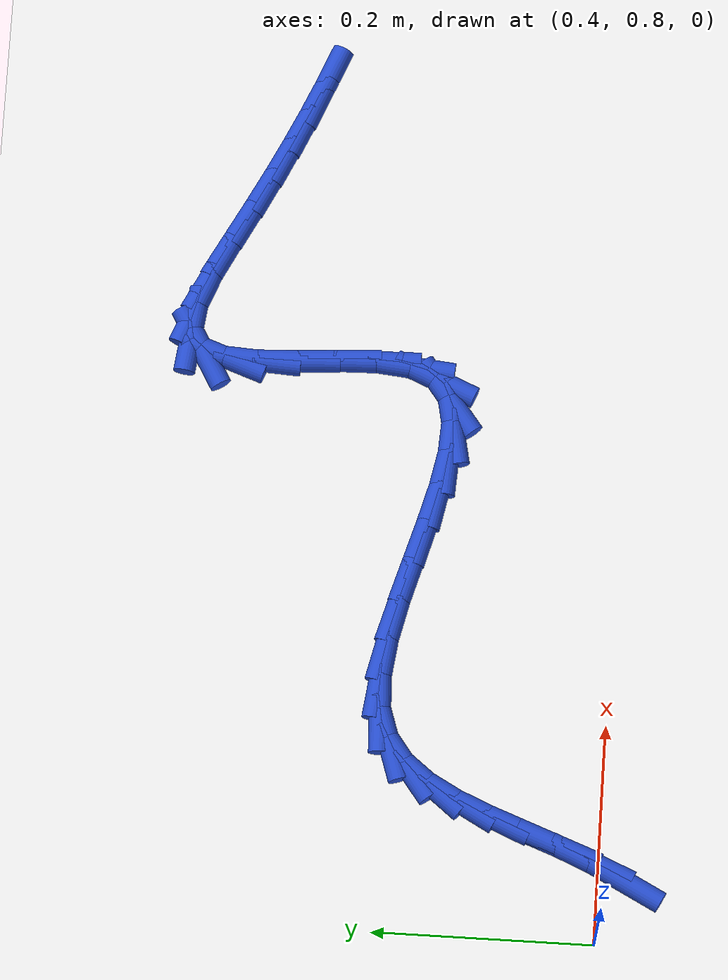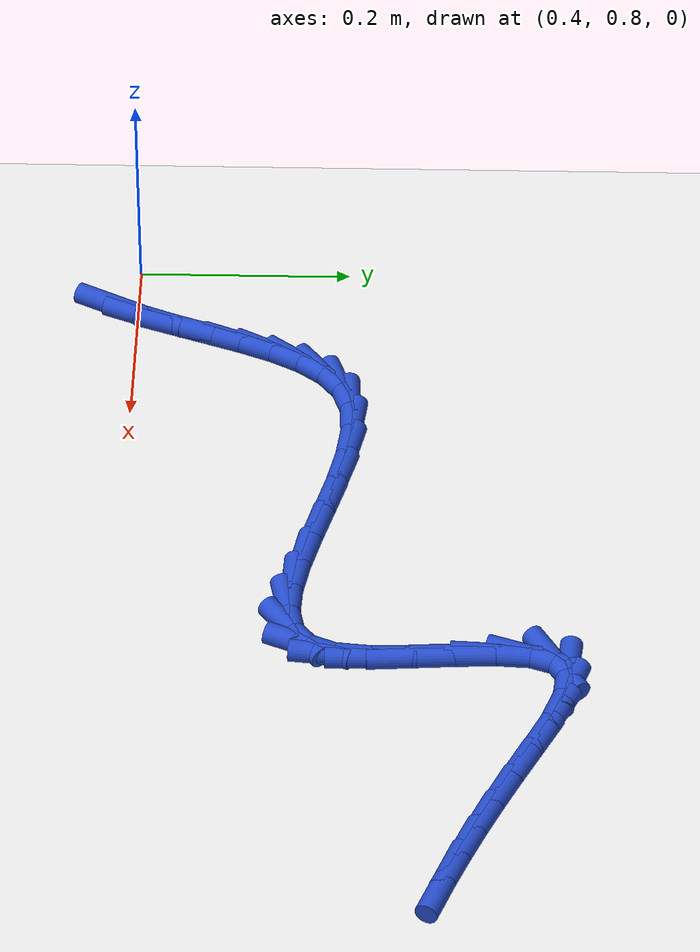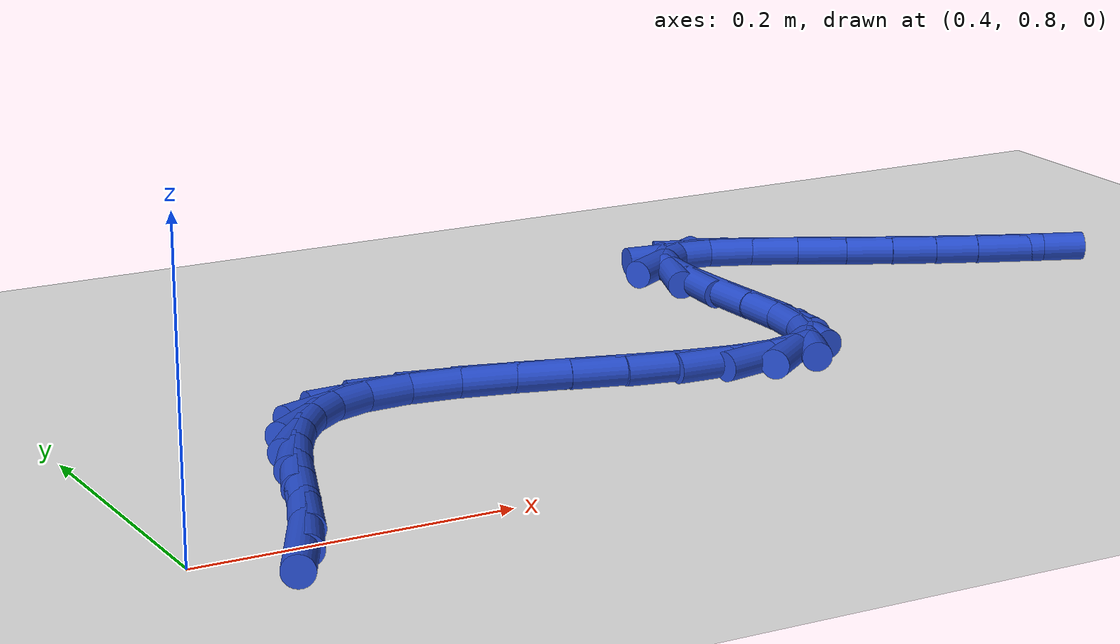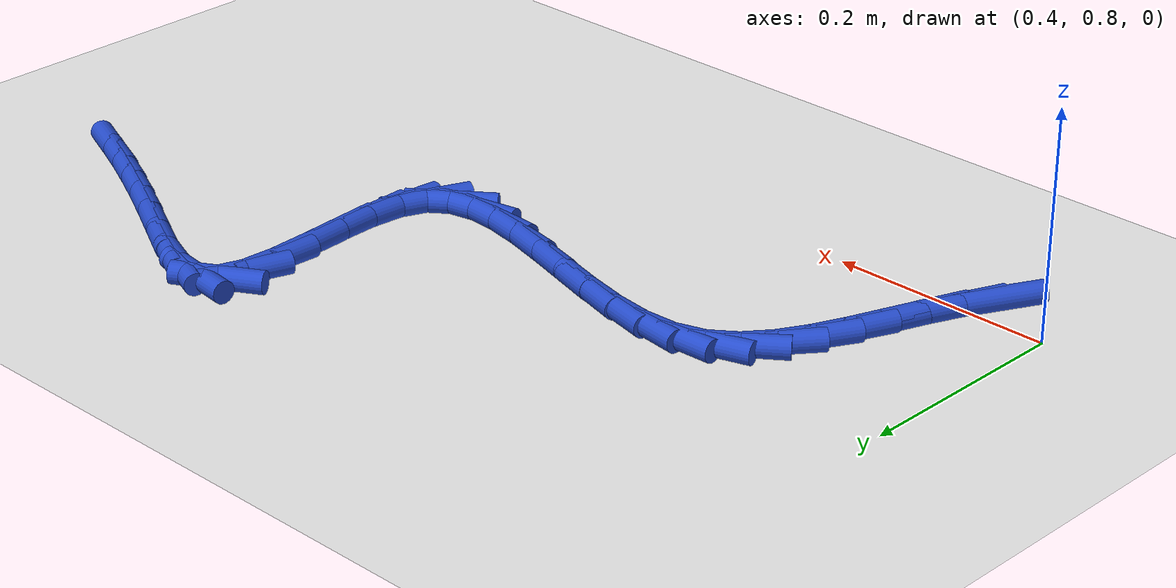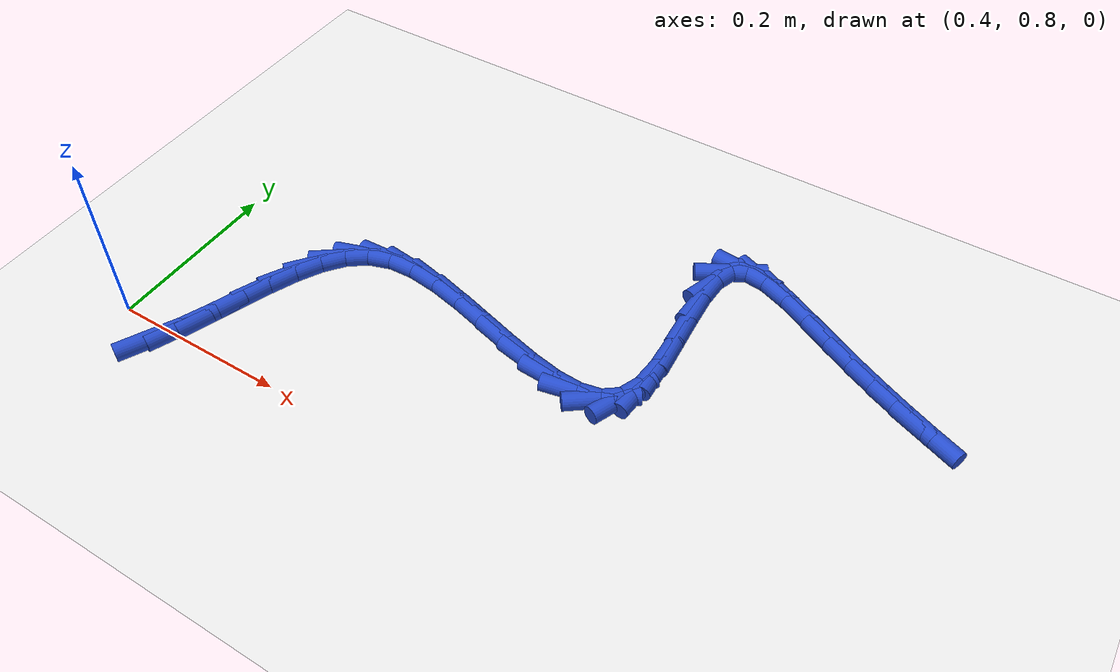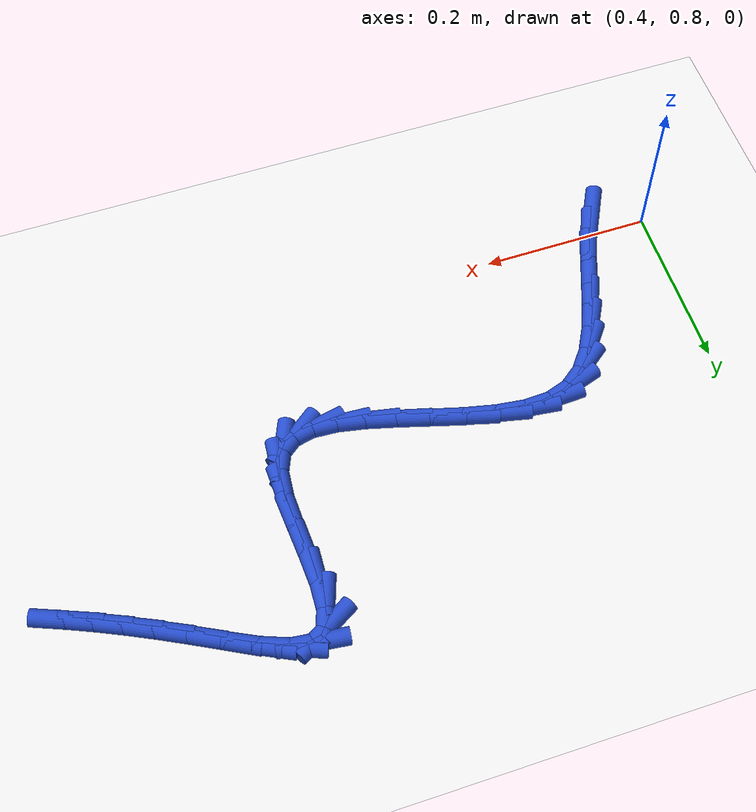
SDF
<sdf version="1.6">
 <world name="default">
  <model name="ground_plane">
   <static>1</static>
   <link name="link">
    <collision name="collision">
     <geometry><plane><normal>0 0 1</normal><size>100 100</size></plane></geometry>
     <surface><friction><ode><mu>100</mu><mu2>50</mu2></ode></friction></surface>
    </collision>
    <visual name="visual">
     <cast_shadows>0</cast_shadows>
     <geometry><plane><normal>0 0 1</normal><size>100 100</size></plane></geometry>
     <material>
      <script><uri>file://media/materials/scripts/gazebo.material</uri><name>Gazebo/WhiteGlow</name></script>
     </material>
    </visual>
   </link>
  </model>
  <model name="line">
   <link name="link_31">
    <pose>0.45915063613449203 0.778719148615513 0.01 0 1.57 1.0962704951491666</pose>
    <collision name="collision">
     <geometry><cylinder><radius>0.01</radius><length>0.08</length></cylinder></geometry>
    </collision>
    <visual name="visual">
     <material>
      <script><name>Gazebo/Blue</name><uri>file://media/materials/scripts/gazebo.material</uri></script>
     </material>
     <geometry><cylinder><radius>0.01</radius><length>0.08</length></cylinder></geometry>
    </visual>
   </link>
   <link name="link_32">
    <pose>0.4736157913508956 0.8068794063865846 0.01 0 1.57 1.172967278083719</pose>
    <collision name="collision">
     <geometry><cylinder><radius>0.01</radius><length>0.08</length></cylinder></geometry>
    </collision>
    <visual name="visual">
     <material>
      <script><name>Gazebo/Blue</name><uri>file://media/materials/scripts/gazebo.material</uri></script>
     </material>
     <geometry><cylinder><radius>0.01</radius><length>0.08</length></cylinder></geometry>
    </visual>
   </link>
   <link name="link_33">
    <pose>0.4864101981601062 0.8373251327337724 0.01 0 1.57 1.2152845462667368</pose>
    <collision name="collision">
     <geometry><cylinder><radius>0.01</radius><length>0.08</length></cylinder></geometry>
    </collision>
    <visual name="visual">
     <material>
      <script><name>Gazebo/Blue</name><uri>file://media/materials/scripts/gazebo.material</uri></script>
     </material>
     <geometry><cylinder><radius>0.01</radius><length>0.08</length></cylinder></geometry>
    </visual>
   </link>
   <link name="link_34">
    <pose>0.49819381989587425 0.8690623347780214 0.01 0 1.57 1.214675562485103</pose>
    <collision name="collision">
     <geometry><cylinder><radius>0.01</radius><length>0.08</length></cylinder></geometry>
    </collision>
    <visual name="visual">
     <material>
      <script><name>Gazebo/Blue</name><uri>file://media/materials/scripts/gazebo.material</uri></script>
     </material>
     <geometry><cylinder><radius>0.01</radius><length>0.08</length></cylinder></geometry>
    </visual>
   </link>
   <link name="link_35">
    <pose>0.5099298609017456 0.9006124906496216 0.01 0 1.57 1.1702819057713336</pose>
    <collision name="collision">
     <geometry><cylinder><radius>0.01</radius><length>0.08</length></cylinder></geometry>
    </collision>
    <visual name="visual">
     <material>
      <script><name>Gazebo/Blue</name><uri>file://media/materials/scripts/gazebo.material</uri></script>
     </material>
     <geometry><cylinder><radius>0.01</radius><length>0.08</length></cylinder></geometry>
    </visual>
   </link>
   <link name="link_36">
    <pose>0.522582397383484 0.9304956853872098 0.01 0 1.57 1.0729018063937743</pose>
    <collision name="collision">
     <geometry><cylinder><radius>0.01</radius><length>0.08</length></cylinder></geometry>
    </collision>
    <visual name="visual">
     <material>
      <script><name>Gazebo/Blue</name><uri>file://media/materials/scripts/gazebo.material</uri></script>
     </material>
     <geometry><cylinder><radius>0.01</radius><length>0.08</length></cylinder></geometry>
    </visual>
   </link>
   <link name="link_37">
    <pose>0.5371155055468513 0.957232004029422 0.01 0 1.57 0.9046597573605681</pose>
    <collision name="collision">
     <geometry><cylinder><radius>0.01</radius><length>0.08</length></cylinder></geometry>
    </collision>
    <visual name="visual">
     <material>
      <script><name>Gazebo/Blue</name><uri>file://media/materials/scripts/gazebo.material</uri></script>
     </material>
     <geometry><cylinder><radius>0.01</radius><length>0.08</length></cylinder></geometry>
    </visual>
   </link>
   <link name="link_38">
    <pose>0.5544932615976108 0.9793415316148942 0.01 0 1.57 0.6469047183386464</pose>
    <collision name="collision">
     <geometry><cylinder><radius>0.01</radius><length>0.08</length></cylinder></geometry>
    </collision>
    <visual name="visual">
     <material>
      <script><name>Gazebo/Blue</name><uri>file://media/materials/scripts/gazebo.material</uri></script>
     </material>
     <geometry><cylinder><radius>0.01</radius><length>0.08</length></cylinder></geometry>
    </visual>
   </link>
   <link name="link_39">
    <pose>0.5756797417415255 0.9953443531822634 0.01 0 1.57 0.3175994807084557</pose>
    <collision name="collision">
     <geometry><cylinder><radius>0.01</radius><length>0.08</length></cylinder></geometry>
    </collision>
    <visual name="visual">
     <material>
      <script><name>Gazebo/Blue</name><uri>file://media/materials/scripts/gazebo.material</uri></script>
     </material>
     <geometry><cylinder><radius>0.01</radius><length>0.08</length></cylinder></geometry>
    </visual>
   </link>
   <link name="link_40">
    <pose>0.6015739367949202 1.0038564839758592 0.01 0 1.57 0.04253857525797999</pose>
    <collision name="collision">
     <geometry><cylinder><radius>0.01</radius><length>0.08</length></cylinder></geometry>
    </collision>
    <visual name="visual">
     <material>
      <script><name>Gazebo/Blue</name><uri>file://media/materials/scripts/gazebo.material</uri></script>
     </material>
     <geometry><cylinder><radius>0.01</radius><length>0.08</length></cylinder></geometry>
    </visual>
   </link>
   <link name="link_41">
    <pose>0.6319516048017316 1.0051494866958663 0.01 0 1.57 -0.1257024147579277</pose>
    <collision name="collision">
     <geometry><cylinder><radius>0.01</radius><length>0.08</length></cylinder></geometry>
    </collision>
    <visual name="visual">
     <material>
      <script><name>Gazebo/Blue</name><uri>file://media/materials/scripts/gazebo.material</uri></script>
     </material>
     <geometry><cylinder><radius>0.01</radius><length>0.08</length></cylinder></geometry>
    </visual>
   </link>
   <link name="link_42">
    <pose>0.6656404514666105 1.0008922707696166 0.01 0 1.57 -0.22238175102146673</pose>
    <collision name="collision">
     <geometry><cylinder><radius>0.01</radius><length>0.08</length></cylinder></geometry>
    </collision>
    <visual name="visual">
     <material>
      <script><name>Gazebo/Blue</name><uri>file://media/materials/scripts/gazebo.material</uri></script>
     </material>
     <geometry><cylinder><radius>0.01</radius><length>0.08</length></cylinder></geometry>
    </visual>
   </link>
   <link name="link_43">
    <pose>0.7014384492495381 0.9927975698421629 0.01 0 1.57 -0.2715432826853941</pose>
    <collision name="collision">
     <geometry><cylinder><radius>0.01</radius><length>0.08</length></cylinder></geometry>
    </collision>
    <visual name="visual">
     <material>
      <script><name>Gazebo/Blue</name><uri>file://media/materials/scripts/gazebo.material</uri></script>
     </material>
     <geometry><cylinder><radius>0.01</radius><length>0.08</length></cylinder></geometry>
    </visual>
   </link>
   <link name="link_44">
    <pose>0.7381435706104956 0.9825781175585571 0.01 0 1.57 -0.2840933482605073</pose>
    <collision name="collision">
     <geometry><cylinder><radius>0.01</radius><length>0.08</length></cylinder></geometry>
    </collision>
    <visual name="visual">
     <material>
      <script><name>Gazebo/Blue</name><uri>file://media/materials/scripts/gazebo.material</uri></script>
     </material>
     <geometry><cylinder><radius>0.01</radius><length>0.08</length></cylinder></geometry>
    </visual>
   </link>
   <link name="link_45">
    <pose>0.7745537880094636 0.9719466475638514 0.01 0 1.57 -0.2611516877198603</pose>
    <collision name="collision">
     <geometry><cylinder><radius>0.01</radius><length>0.08</length></cylinder></geometry>
    </collision>
    <visual name="visual">
     <material>
      <script><name>Gazebo/Blue</name><uri>file://media/materials/scripts/gazebo.material</uri></script>
     </material>
     <geometry><cylinder><radius>0.01</radius><length>0.08</length></cylinder></geometry>
    </visual>
   </link>
   <link name="link_46">
    <pose>0.8094670739064234 0.9626158935030983 0.01 0 1.57 -0.19364500436426565</pose>
    <collision name="collision">
     <geometry><cylinder><radius>0.01</radius><length>0.08</length></cylinder></geometry>
    </collision>
    <visual name="visual">
     <material>
      <script><name>Gazebo/Blue</name><uri>file://media/materials/scripts/gazebo.material</uri></script>
     </material>
     <geometry><cylinder><radius>0.01</radius><length>0.08</length></cylinder></geometry>
    </visual>
   </link>
   <link name="link_47">
    <pose>0.8416814007613558 0.9562985890213502 0.01 0 1.57 -0.05613782908101078</pose>
    <collision name="collision">
     <geometry><cylinder><radius>0.01</radius><length>0.08</length></cylinder></geometry>
    </collision>
    <visual name="visual">
     <material>
      <script><name>Gazebo/Blue</name><uri>file://media/materials/scripts/gazebo.material</uri></script>
     </material>
     <geometry><cylinder><radius>0.01</radius><length>0.08</length></cylinder></geometry>
    </visual>
   </link>
   <link name="link_48">
    <pose>0.869994741034242 0.9547074677636591 0.01 0 1.57 0.20590368198363146</pose>
    <collision name="collision">
     <geometry><cylinder><radius>0.01</radius><length>0.08</length></cylinder></geometry>
    </collision>
    <visual name="visual">
     <material>
      <script><name>Gazebo/Blue</name><uri>file://media/materials/scripts/gazebo.material</uri></script>
     </material>
     <geometry><cylinder><radius>0.01</radius><length>0.08</length></cylinder></geometry>
    </visual>
   </link>
   <link name="link_49">
    <pose>0.8932050671850628 0.9595552633750776 0.01 0 1.57 0.6555239522027402</pose>
    <collision name="collision">
     <geometry><cylinder><radius>0.01</radius><length>0.08</length></cylinder></geometry>
    </collision>
    <visual name="visual">
     <material>
      <script><name>Gazebo/Blue</name><uri>file://media/materials/scripts/gazebo.material</uri></script>
     </material>
     <geometry><cylinder><radius>0.01</radius><length>0.08</length></cylinder></geometry>
    </visual>
   </link>
   <link name="link_50">
    <pose>0.9101103516737993 0.9725547095006578 0.01 0 1.57 1.172671231263273</pose>
    <collision name="collision">
     <geometry><cylinder><radius>0.01</radius><length>0.08</length></cylinder></geometry>
    </collision>
    <visual name="visual">
     <material>
      <script><name>Gazebo/Blue</name><uri>file://media/materials/scripts/gazebo.material</uri></script>
     </material>
     <geometry><cylinder><radius>0.01</radius><length>0.08</length></cylinder></geometry>
    </visual>
   </link>
   <link name="link_51">
    <pose>0.9196453515854078 0.9952255176161227 0.01 0 1.57 1.47172185277886</pose>
    <collision name="collision">
     <geometry><cylinder><radius>0.01</radius><length>0.08</length></cylinder></geometry>
    </collision>
    <visual name="visual">
     <material>
      <script><name>Gazebo/Blue</name><uri>file://media/materials/scripts/gazebo.material</uri></script>
     </material>
     <geometry><cylinder><radius>0.01</radius><length>0.08</length></cylinder></geometry>
    </visual>
   </link>
   <link name="link_52">
    <pose>0.9227324246954024 1.0262826176135769 0.01 0 1.57 -1.5447732184338276</pose>
    <collision name="collision">
     <geometry><cylinder><radius>0.01</radius><length>0.08</length></cylinder></geometry>
    </collision>
    <visual name="visual">
     <material>
      <script><name>Gazebo/Blue</name><uri>file://media/materials/scripts/gazebo.material</uri></script>
     </material>
     <geometry><cylinder><radius>0.01</radius><length>0.08</length></cylinder></geometry>
    </visual>
   </link>
   <link name="link_53">
    <pose>0.9217943122090171 1.0623236892593673 0.01 0 1.57 -1.5042565350602122</pose>
    <collision name="collision">
     <geometry><cylinder><radius>0.01</radius><length>0.08</length></cylinder></geometry>
    </collision>
    <visual name="visual">
     <material>
      <script><name>Gazebo/Blue</name><uri>file://media/materials/scripts/gazebo.material</uri></script>
     </material>
     <geometry><cylinder><radius>0.01</radius><length>0.08</length></cylinder></geometry>
    </visual>
   </link>
   <link name="link_54">
    <pose>0.9192906745757944 1.099894314120735 0.01 0 1.57 -1.5256742734886328</pose>
    <collision name="collision">
     <geometry><cylinder><radius>0.01</radius><length>0.08</length></cylinder></geometry>
    </collision>
    <visual name="visual">
     <material>
      <script><name>Gazebo/Blue</name><uri>file://media/materials/scripts/gazebo.material</uri></script>
     </material>
     <geometry><cylinder><radius>0.01</radius><length>0.08</length></cylinder></geometry>
    </visual>
   </link>
   <link name="link_55">
    <pose>0.917681172245277 1.1355400737649213 0.01 0 1.57 1.5132288015301205</pose>
    <collision name="collision">
     <geometry><cylinder><radius>0.01</radius><length>0.08</length></cylinder></geometry>
    </collision>
    <visual name="visual">
     <material>
      <script><name>Gazebo/Blue</name><uri>file://media/materials/scripts/gazebo.material</uri></script>
     </material>
     <geometry><cylinder><radius>0.01</radius><length>0.08</length></cylinder></geometry>
    </visual>
   </link>
   <link name="link_56">
    <pose>0.9194254656670074 1.1658065497591668 0.01 0 1.57 1.2317841586224976</pose>
    <collision name="collision">
     <geometry><cylinder><radius>0.01</radius><length>0.08</length></cylinder></geometry>
    </collision>
    <visual name="visual">
     <material>
      <script><name>Gazebo/Blue</name><uri>file://media/materials/scripts/gazebo.material</uri></script>
     </material>
     <geometry><cylinder><radius>0.01</radius><length>0.08</length></cylinder></geometry>
    </visual>
   </link>
   <link name="link_57">
    <pose>0.9269832152905287 1.1872393236707137 0.01 0 1.57 0.5317993670149042</pose>
    <collision name="collision">
     <geometry><cylinder><radius>0.01</radius><length>0.08</length></cylinder></geometry>
    </collision>
    <visual name="visual">
     <material>
      <script><name>Gazebo/Blue</name><uri>file://media/materials/scripts/gazebo.material</uri></script>
     </material>
     <geometry><cylinder><radius>0.01</radius><length>0.08</length></cylinder></geometry>
    </visual>
   </link>
   <link name="link_58">
    <pose>0.9427290959804688 1.1965032024244868 0.01 0 1.57 -0.12266862102347689</pose>
    <collision name="collision">
     <geometry><cylinder><radius>0.01</radius><length>0.08</length></cylinder></geometry>
    </collision>
    <visual name="visual">
     <material>
      <script><name>Gazebo/Blue</name><uri>file://media/materials/scripts/gazebo.material</uri></script>
     </material>
     <geometry><cylinder><radius>0.01</radius><length>0.08</length></cylinder></geometry>
    </visual>
   </link>
   <link name="link_59">
    <pose>0.9666959022687049 1.1935483915292808 0.01 0 1.57 -0.37315613800252745</pose>
    <collision name="collision">
     <geometry><cylinder><radius>0.01</radius><length>0.08</length></cylinder></geometry>
    </collision>
    <visual name="visual">
     <material>
      <script><name>Gazebo/Blue</name><uri>file://media/materials/scripts/gazebo.material</uri></script>
     </material>
     <geometry><cylinder><radius>0.01</radius><length>0.08</length></cylinder></geometry>
    </visual>
   </link>
   <link name="link_60">
    <pose>0.9963368069775649 1.1819440198833315 0.01 0 1.57 -0.4680728456625661</pose>
    <collision name="collision">
     <geometry><cylinder><radius>0.01</radius><length>0.08</length></cylinder></geometry>
    </collision>
    <visual name="visual">
     <material>
      <script><name>Gazebo/Blue</name><uri>file://media/materials/scripts/gazebo.material</uri></script>
     </material>
     <geometry><cylinder><radius>0.01</radius><length>0.08</length></cylinder></geometry>
    </visual>
   </link>
   <link name="link_61">
    <pose>1.0289723096795942 1.1654453422517108 0.01 0 1.57 -0.4916380510884422</pose>
    <collision name="collision">
     <geometry><cylinder><radius>0.01</radius><length>0.08</length></cylinder></geometry>
    </collision>
    <visual name="visual">
     <material>
      <script><name>Gazebo/Blue</name><uri>file://media/materials/scripts/gazebo.material</uri></script>
     </material>
     <geometry><cylinder><radius>0.01</radius><length>0.08</length></cylinder></geometry>
    </visual>
   </link>
   <link name="link_62">
    <pose>1.0619317070836891 1.1477957803943486 0.01 0 1.57 -0.4772264739205649</pose>
    <collision name="collision">
     <geometry><cylinder><radius>0.01</radius><length>0.08</length></cylinder></geometry>
    </collision>
    <visual name="visual">
     <material>
      <script><name>Gazebo/Blue</name><uri>file://media/materials/scripts/gazebo.material</uri></script>
     </material>
     <geometry><cylinder><radius>0.01</radius><length>0.08</length></cylinder></geometry>
    </visual>
   </link>
   <link name="link_63">
    <pose>1.0934772106222705 1.1314838949123416 0.01 0 1.57 -0.45735072257823034</pose>
    <collision name="collision">
     <geometry><cylinder><radius>0.01</radius><length>0.08</length></cylinder></geometry>
    </collision>
    <visual name="visual">
     <material>
      <script><name>Gazebo/Blue</name><uri>file://media/materials/scripts/gazebo.material</uri></script>
     </material>
     <geometry><cylinder><radius>0.01</radius><length>0.08</length></cylinder></geometry>
    </visual>
   </link>
   <link name="link_64">
    <pose>1.123616128590934 1.1166509211724487 0.01 0 1.57 -0.43575265361047505</pose>
    <collision name="collision">
     <geometry><cylinder><radius>0.01</radius><length>0.08</length></cylinder></geometry>
    </collision>
    <visual name="visual">
     <material>
      <script><name>Gazebo/Blue</name><uri>file://media/materials/scripts/gazebo.material</uri></script>
     </material>
     <geometry><cylinder><radius>0.01</radius><length>0.08</length></cylinder></geometry>
    </visual>
   </link>
   <link name="link_65">
    <pose>1.1525472561301062 1.103180526086409 0.01 0 1.57 -0.412657409197168</pose>
    <collision name="collision">
     <geometry><cylinder><radius>0.01</radius><length>0.08</length></cylinder></geometry>
    </collision>
    <visual name="visual">
     <material>
      <script><name>Gazebo/Blue</name><uri>file://media/materials/scripts/gazebo.material</uri></script>
     </material>
     <geometry><cylinder><radius>0.01</radius><length>0.08</length></cylinder></geometry>
    </visual>
   </link>
   <link name="link_66">
    <pose>1.1804693883802142 1.090956376565958 0.01 0 1.57 -0.38841325361618595</pose>
    <collision name="collision">
     <geometry><cylinder><radius>0.01</radius><length>0.08</length></cylinder></geometry>
    </collision>
    <visual name="visual">
     <material>
      <script><name>Gazebo/Blue</name><uri>file://media/materials/scripts/gazebo.material</uri></script>
     </material>
     <geometry><cylinder><radius>0.01</radius><length>0.08</length></cylinder></geometry>
    </visual>
   </link>
  </model>
 </world>
</sdf>
